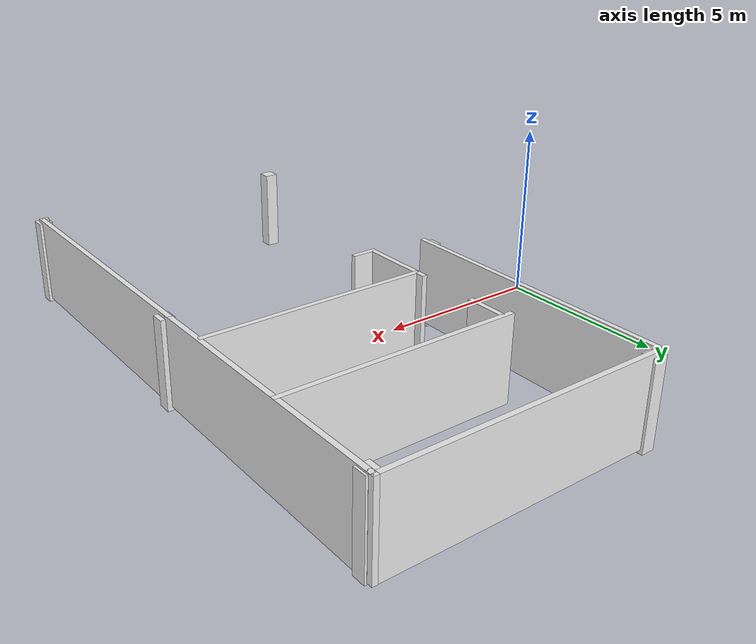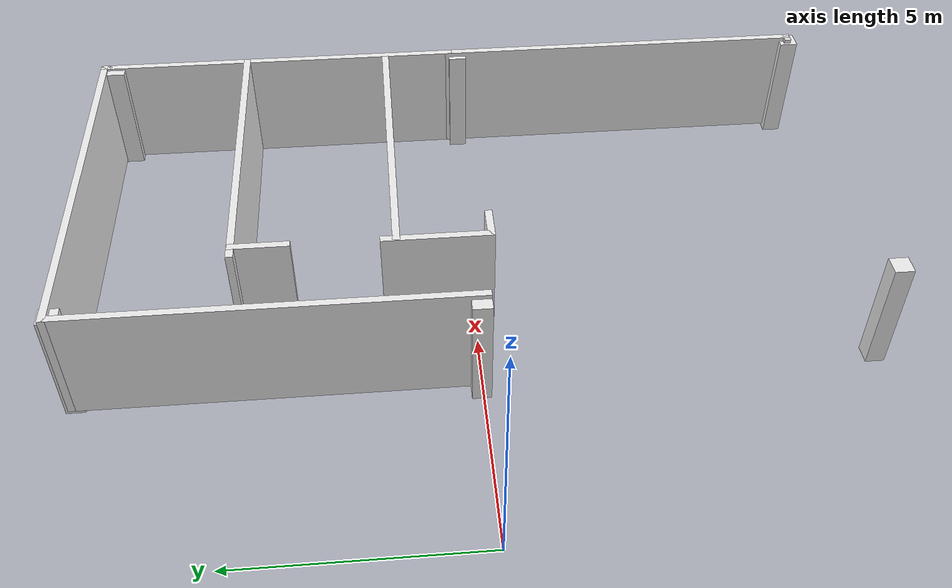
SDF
<sdf version="1.6">
 <model name="h_wall">
  <link name="Wall_11">
   <pose>11.9424 -8.025 0 0 -0 0</pose>
   <visual name="Wall_11_Visual">
    <pose>0 0 1.25 0 -0 0</pose>
    <geometry><box><size>0.25 0.15 2.5</size></box></geometry>
    <material>
     <script><uri>file://media/materials/scripts/gazebo.material</uri><name>Gazebo/White</name></script>
     <ambient>1 1 1 1</ambient>
     <diffuse>0.7 0.7 0.7 1</diffuse>
     <specular>0.01 0.01 0.01 1</specular>
     <emissive>0 0 0 1</emissive>
    </material>
   </visual>
   <collision name="Wall_11_Collision">
    <pose>0 0 1.25 0 -0 0</pose>
    <geometry><box><size>0.25 0.15 2.5</size></box></geometry>
    <surface>
     <friction>
      <ode><mu>1</mu><mu2>1</mu2><fdir1>0 0 0</fdir1><slip1>0</slip1><slip2>0</slip2></ode>
      <torsional>
       <coefficient>1</coefficient>
       <patch_radius>0</patch_radius>
       <surface_radius>0</surface_radius>
       <use_patch_radius>1</use_patch_radius>
       <ode><slip>0</slip></ode>
      </torsional>
     </friction>
     <bounce><restitution_coefficient>0</restitution_coefficient><threshold>1e+06</threshold></bounce>
     <contact>
      <collide_without_contact>0</collide_without_contact>
      <collide_without_contact_bitmask>1</collide_without_contact_bitmask>
      <collide_bitmask>1</collide_bitmask>
      <ode>
       <soft_cfm>0</soft_cfm>
       <soft_erp>0.2</soft_erp>
       <kp>1e+13</kp>
       <kd>1</kd>
       <max_vel>0.01</max_vel>
       <min_depth>0</min_depth>
      </ode>
      <bullet>
       <split_impulse>1</split_impulse>
       <split_impulse_penetration_threshold>-0.01</split_impulse_penetration_threshold>
       <soft_cfm>0</soft_cfm>
       <soft_erp>0.2</soft_erp>
       <kp>1e+13</kp>
       <kd>1</kd>
      </bullet>
     </contact>
    </surface>
   </collision>
  </link>
  <link name="Wall_12">
   <pose>11.9924 -3.975 0 0 -0 1.5708</pose>
   <visual name="Wall_12_Visual">
    <pose>0 0 1.25 0 -0 0</pose>
    <geometry><box><size>8.25 0.15 2.5</size></box></geometry>
    <material>
     <script><uri>file://media/materials/scripts/gazebo.material</uri><name>Gazebo/White</name></script>
     <ambient>1 1 1 1</ambient>
     <diffuse>0.7 0.7 0.7 1</diffuse>
     <specular>0.01 0.01 0.01 1</specular>
     <emissive>0 0 0 1</emissive>
    </material>
   </visual>
   <collision name="Wall_12_Collision">
    <pose>0 0 1.25 0 -0 0</pose>
    <geometry><box><size>8.25 0.15 2.5</size></box></geometry>
    <surface>
     <friction>
      <ode><mu>1</mu><mu2>1</mu2><fdir1>0 0 0</fdir1><slip1>0</slip1><slip2>0</slip2></ode>
      <torsional>
       <coefficient>1</coefficient>
       <patch_radius>0</patch_radius>
       <surface_radius>0</surface_radius>
       <use_patch_radius>1</use_patch_radius>
       <ode><slip>0</slip></ode>
      </torsional>
     </friction>
     <bounce><restitution_coefficient>0</restitution_coefficient><threshold>1e+06</threshold></bounce>
     <contact>
      <collide_without_contact>0</collide_without_contact>
      <collide_without_contact_bitmask>1</collide_without_contact_bitmask>
      <collide_bitmask>1</collide_bitmask>
      <ode>
       <soft_cfm>0</soft_cfm>
       <soft_erp>0.2</soft_erp>
       <kp>1e+13</kp>
       <kd>1</kd>
       <max_vel>0.01</max_vel>
       <min_depth>0</min_depth>
      </ode>
      <bullet>
       <split_impulse>1</split_impulse>
       <split_impulse_penetration_threshold>-0.01</split_impulse_penetration_threshold>
       <soft_cfm>0</soft_cfm>
       <soft_erp>0.2</soft_erp>
       <kp>1e+13</kp>
       <kd>1</kd>
      </bullet>
     </contact>
    </surface>
   </collision>
  </link>
  <link name="Wall_13">
   <pose>11.9924 4 0 0 -0 1.5708</pose>
   <inertial>
    <mass>1</mass>
    <inertia><ixx>1</ixx><ixy>0</ixy><ixz>0</ixz><iyy>1</iyy><iyz>0</iyz><izz>1</izz></inertia>
   </inertial>
   <visual name="Wall_13_Visual">
    <pose>0 0 1.25 0 -0 0</pose>
    <geometry><box><size>8 0.15 2.5</size></box></geometry>
    <material>
     <script><uri>file://media/materials/scripts/gazebo.material</uri><name>Gazebo/White</name></script>
     <ambient>1 1 1 1</ambient>
     <diffuse>0.7 0.7 0.7 1</diffuse>
     <specular>0.01 0.01 0.01 1</specular>
     <emissive>0 0 0 1</emissive>
     <shader type="vertex"><normal_map>__default__</normal_map></shader>
    </material>
   </visual>
   <collision name="Wall_13_Collision">
    <pose>0 0 1.25 0 -0 0</pose>
    <geometry><box><size>8 0.15 2.5</size></box></geometry>
    <surface>
     <friction>
      <ode><mu>1</mu><mu2>1</mu2><fdir1>0 0 0</fdir1><slip1>0</slip1><slip2>0</slip2></ode>
      <torsional>
       <coefficient>1</coefficient>
       <patch_radius>0</patch_radius>
       <surface_radius>0</surface_radius>
       <use_patch_radius>1</use_patch_radius>
       <ode><slip>0</slip></ode>
      </torsional>
     </friction>
     <bounce><restitution_coefficient>0</restitution_coefficient><threshold>1e+06</threshold></bounce>
     <contact>
      <collide_without_contact>0</collide_without_contact>
      <collide_without_contact_bitmask>1</collide_without_contact_bitmask>
      <collide_bitmask>1</collide_bitmask>
      <ode>
       <soft_cfm>0</soft_cfm>
       <soft_erp>0.2</soft_erp>
       <kp>1e+13</kp>
       <kd>1</kd>
       <max_vel>0.01</max_vel>
       <min_depth>0</min_depth>
      </ode>
      <bullet>
       <split_impulse>1</split_impulse>
       <split_impulse_penetration_threshold>-0.01</split_impulse_penetration_threshold>
       <soft_cfm>0</soft_cfm>
       <soft_erp>0.2</soft_erp>
       <kp>1e+13</kp>
       <kd>1</kd>
      </bullet>
     </contact>
    </surface>
   </collision>
  </link>
  <link name="Wall_14">
   <pose>11.9924 7.925 0 0 -0 0</pose>
   <visual name="Wall_14_Visual">
    <pose>0 0 1.25 0 -0 0</pose>
    <geometry><box><size>0.15 0.15 2.5</size></box></geometry>
    <material>
     <script><uri>file://media/materials/scripts/gazebo.material</uri><name>Gazebo/White</name></script>
     <ambient>1 1 1 1</ambient>
     <diffuse>0.7 0.7 0.7 1</diffuse>
     <specular>0.01 0.01 0.01 1</specular>
     <emissive>0 0 0 1</emissive>
    </material>
   </visual>
   <collision name="Wall_14_Collision">
    <pose>0 0 1.25 0 -0 0</pose>
    <geometry><box><size>0.15 0.15 2.5</size></box></geometry>
    <surface>
     <friction>
      <ode><mu>1</mu><mu2>1</mu2><fdir1>0 0 0</fdir1><slip1>0</slip1><slip2>0</slip2></ode>
      <torsional>
       <coefficient>1</coefficient>
       <patch_radius>0</patch_radius>
       <surface_radius>0</surface_radius>
       <use_patch_radius>1</use_patch_radius>
       <ode><slip>0</slip></ode>
      </torsional>
     </friction>
     <bounce><restitution_coefficient>0</restitution_coefficient><threshold>1e+06</threshold></bounce>
     <contact>
      <collide_without_contact>0</collide_without_contact>
      <collide_without_contact_bitmask>1</collide_without_contact_bitmask>
      <collide_bitmask>1</collide_bitmask>
      <ode>
       <soft_cfm>0</soft_cfm>
       <soft_erp>0.2</soft_erp>
       <kp>1e+13</kp>
       <kd>1</kd>
       <max_vel>0.01</max_vel>
       <min_depth>0</min_depth>
      </ode>
      <bullet>
       <split_impulse>1</split_impulse>
       <split_impulse_penetration_threshold>-0.01</split_impulse_penetration_threshold>
       <soft_cfm>0</soft_cfm>
       <soft_erp>0.2</soft_erp>
       <kp>1e+13</kp>
       <kd>1</kd>
      </bullet>
     </contact>
    </surface>
   </collision>
  </link>
  <link name="Wall_15">
   <pose>11.9924 7.975 0 0 -0 1.5708</pose>
   <visual name="Wall_15_Visual">
    <pose>0 0 1.25 0 -0 0</pose>
    <geometry><box><size>0.25 0.15 2.5</size></box></geometry>
    <material>
     <script><uri>file://media/materials/scripts/gazebo.material</uri><name>Gazebo/White</name></script>
     <ambient>1 1 1 1</ambient>
     <diffuse>0.7 0.7 0.7 1</diffuse>
     <specular>0.01 0.01 0.01 1</specular>
     <emissive>0 0 0 1</emissive>
    </material>
   </visual>
   <collision name="Wall_15_Collision">
    <pose>0 0 1.25 0 -0 0</pose>
    <geometry><box><size>0.25 0.15 2.5</size></box></geometry>
    <surface>
     <friction>
      <ode><mu>1</mu><mu2>1</mu2><fdir1>0 0 0</fdir1><slip1>0</slip1><slip2>0</slip2></ode>
      <torsional>
       <coefficient>1</coefficient>
       <patch_radius>0</patch_radius>
       <surface_radius>0</surface_radius>
       <use_patch_radius>1</use_patch_radius>
       <ode><slip>0</slip></ode>
      </torsional>
     </friction>
     <bounce><restitution_coefficient>0</restitution_coefficient><threshold>1e+06</threshold></bounce>
     <contact>
      <collide_without_contact>0</collide_without_contact>
      <collide_without_contact_bitmask>1</collide_without_contact_bitmask>
      <collide_bitmask>1</collide_bitmask>
      <ode>
       <soft_cfm>0</soft_cfm>
       <soft_erp>0.2</soft_erp>
       <kp>1e+13</kp>
       <kd>1</kd>
       <max_vel>0.01</max_vel>
       <min_depth>0</min_depth>
      </ode>
      <bullet>
       <split_impulse>1</split_impulse>
       <split_impulse_penetration_threshold>-0.01</split_impulse_penetration_threshold>
       <soft_cfm>0</soft_cfm>
       <soft_erp>0.2</soft_erp>
       <kp>1e+13</kp>
       <kd>1</kd>
      </bullet>
     </contact>
    </surface>
   </collision>
  </link>
  <link name="Wall_16">
   <pose>7.94243 8.025 0 0 -0 3.14159</pose>
   <visual name="Wall_16_Visual">
    <pose>0 0 1.25 0 -0 0</pose>
    <geometry><box><size>8.25 0.15 2.5</size></box></geometry>
    <material>
     <script><uri>file://media/materials/scripts/gazebo.material</uri><name>Gazebo/White</name></script>
     <ambient>1 1 1 1</ambient>
     <diffuse>0.7 0.7 0.7 1</diffuse>
     <specular>0.01 0.01 0.01 1</specular>
     <emissive>0 0 0 1</emissive>
    </material>
   </visual>
   <collision name="Wall_16_Collision">
    <pose>0 0 1.25 0 -0 0</pose>
    <geometry><box><size>8.25 0.15 2.5</size></box></geometry>
    <surface>
     <friction>
      <ode><mu>1</mu><mu2>1</mu2><fdir1>0 0 0</fdir1><slip1>0</slip1><slip2>0</slip2></ode>
      <torsional>
       <coefficient>1</coefficient>
       <patch_radius>0</patch_radius>
       <surface_radius>0</surface_radius>
       <use_patch_radius>1</use_patch_radius>
       <ode><slip>0</slip></ode>
      </torsional>
     </friction>
     <bounce><restitution_coefficient>0</restitution_coefficient><threshold>1e+06</threshold></bounce>
     <contact>
      <collide_without_contact>0</collide_without_contact>
      <collide_without_contact_bitmask>1</collide_without_contact_bitmask>
      <collide_bitmask>1</collide_bitmask>
      <ode>
       <soft_cfm>0</soft_cfm>
       <soft_erp>0.2</soft_erp>
       <kp>1e+13</kp>
       <kd>1</kd>
       <max_vel>0.01</max_vel>
       <min_depth>0</min_depth>
      </ode>
      <bullet>
       <split_impulse>1</split_impulse>
       <split_impulse_penetration_threshold>-0.01</split_impulse_penetration_threshold>
       <soft_cfm>0</soft_cfm>
       <soft_erp>0.2</soft_erp>
       <kp>1e+13</kp>
       <kd>1</kd>
      </bullet>
     </contact>
    </surface>
   </collision>
  </link>
  <link name="Wall_17">
   <pose>3.89243 3.975 0 0 0 -1.5708</pose>
   <visual name="Wall_17_Visual">
    <pose>0 0 1.25 0 -0 0</pose>
    <geometry><box><size>8.25 0.15 2.5</size></box></geometry>
    <material>
     <script><uri>file://media/materials/scripts/gazebo.material</uri><name>Gazebo/White</name></script>
     <ambient>1 1 1 1</ambient>
     <diffuse>0.7 0.7 0.7 1</diffuse>
     <specular>0.01 0.01 0.01 1</specular>
     <emissive>0 0 0 1</emissive>
    </material>
   </visual>
   <collision name="Wall_17_Collision">
    <pose>0 0 1.25 0 -0 0</pose>
    <geometry><box><size>8.25 0.15 2.5</size></box></geometry>
    <surface>
     <friction>
      <ode><mu>1</mu><mu2>1</mu2><fdir1>0 0 0</fdir1><slip1>0</slip1><slip2>0</slip2></ode>
      <torsional>
       <coefficient>1</coefficient>
       <patch_radius>0</patch_radius>
       <surface_radius>0</surface_radius>
       <use_patch_radius>1</use_patch_radius>
       <ode><slip>0</slip></ode>
      </torsional>
     </friction>
     <bounce><restitution_coefficient>0</restitution_coefficient><threshold>1e+06</threshold></bounce>
     <contact>
      <collide_without_contact>0</collide_without_contact>
      <collide_without_contact_bitmask>1</collide_without_contact_bitmask>
      <collide_bitmask>1</collide_bitmask>
      <ode>
       <soft_cfm>0</soft_cfm>
       <soft_erp>0.2</soft_erp>
       <kp>1e+13</kp>
       <kd>1</kd>
       <max_vel>0.01</max_vel>
       <min_depth>0</min_depth>
      </ode>
      <bullet>
       <split_impulse>1</split_impulse>
       <split_impulse_penetration_threshold>-0.01</split_impulse_penetration_threshold>
       <soft_cfm>0</soft_cfm>
       <soft_erp>0.2</soft_erp>
       <kp>1e+13</kp>
       <kd>1</kd>
      </bullet>
     </contact>
    </surface>
   </collision>
  </link>
  <link name="Wall_33">
   <pose>8.6623 4.75744 0 0 -0 0</pose>
   <inertial>
    <inertia><ixx>nan</ixx><ixy>0</ixy><ixz>0</ixz><iyy>nan</iyy><iyz>0</iyz><izz>nan</izz></inertia>
    <mass>0</mass>
   </inertial>
   <visual name="Wall_33_Visual">
    <pose>0 0 1.25 0 -0 0</pose>
    <geometry><box><size>6.80324 0.15 2.5</size></box></geometry>
    <material>
     <script><uri>file://media/materials/scripts/gazebo.material</uri><name>Gazebo/White</name></script>
     <ambient>1 1 1 1</ambient>
     <diffuse>0.7 0.7 0.7 1</diffuse>
     <specular>0.01 0.01 0.01 1</specular>
     <emissive>0 0 0 1</emissive>
    </material>
   </visual>
   <collision name="Wall_33_Collision">
    <pose>0 0 1.25 0 -0 0</pose>
    <geometry><box><size>6.80324 0.15 2.5</size></box></geometry>
    <surface>
     <friction>
      <ode><mu>1</mu><mu2>1</mu2><fdir1>0 0 0</fdir1><slip1>0</slip1><slip2>0</slip2></ode>
      <torsional>
       <coefficient>1</coefficient>
       <patch_radius>0</patch_radius>
       <surface_radius>0</surface_radius>
       <use_patch_radius>1</use_patch_radius>
       <ode><slip>0</slip></ode>
      </torsional>
     </friction>
     <bounce><restitution_coefficient>0</restitution_coefficient><threshold>1e+06</threshold></bounce>
     <contact>
      <collide_without_contact>0</collide_without_contact>
      <collide_without_contact_bitmask>1</collide_without_contact_bitmask>
      <collide_bitmask>1</collide_bitmask>
      <ode>
       <soft_cfm>0</soft_cfm>
       <soft_erp>0.2</soft_erp>
       <kp>1e+13</kp>
       <kd>1</kd>
       <max_vel>0.01</max_vel>
       <min_depth>0</min_depth>
      </ode>
      <bullet>
       <split_impulse>1</split_impulse>
       <split_impulse_penetration_threshold>-0.01</split_impulse_penetration_threshold>
       <soft_cfm>0</soft_cfm>
       <soft_erp>0.2</soft_erp>
       <kp>1e+13</kp>
       <kd>1</kd>
      </bullet>
     </contact>
    </surface>
   </collision>
  </link>
  <link name="Wall_35">
   <pose>5.55705 4.2159 0 0 0 -1.5708</pose>
   <inertial>
    <inertia><ixx>nan</ixx><ixy>0</ixy><ixz>0</ixz><iyy>nan</iyy><iyz>0</iyz><izz>nan</izz></inertia>
    <mass>0</mass>
   </inertial>
   <visual name="Wall_35_Visual">
    <pose>0 0 1.25 0 -0 0</pose>
    <geometry><box><size>1.22204 0.15 2.5</size></box></geometry>
    <material>
     <script><uri>file://media/materials/scripts/gazebo.material</uri><name>Gazebo/White</name></script>
     <ambient>1 1 1 1</ambient>
     <diffuse>0.7 0.7 0.7 1</diffuse>
     <specular>0.01 0.01 0.01 1</specular>
     <emissive>0 0 0 1</emissive>
    </material>
   </visual>
   <collision name="Wall_35_Collision">
    <pose>0 0 1.25 0 -0 0</pose>
    <geometry><box><size>1.22204 0.15 2.5</size></box></geometry>
    <surface>
     <friction>
      <ode><mu>1</mu><mu2>1</mu2><fdir1>0 0 0</fdir1><slip1>0</slip1><slip2>0</slip2></ode>
      <torsional>
       <coefficient>1</coefficient>
       <patch_radius>0</patch_radius>
       <surface_radius>0</surface_radius>
       <use_patch_radius>1</use_patch_radius>
       <ode><slip>0</slip></ode>
      </torsional>
     </friction>
     <bounce><restitution_coefficient>0</restitution_coefficient><threshold>1e+06</threshold></bounce>
     <contact>
      <collide_without_contact>0</collide_without_contact>
      <collide_without_contact_bitmask>1</collide_without_contact_bitmask>
      <collide_bitmask>1</collide_bitmask>
      <ode>
       <soft_cfm>0</soft_cfm>
       <soft_erp>0.2</soft_erp>
       <kp>1e+13</kp>
       <kd>1</kd>
       <max_vel>0.01</max_vel>
       <min_depth>0</min_depth>
      </ode>
      <bullet>
       <split_impulse>1</split_impulse>
       <split_impulse_penetration_threshold>-0.01</split_impulse_penetration_threshold>
       <soft_cfm>0</soft_cfm>
       <soft_erp>0.2</soft_erp>
       <kp>1e+13</kp>
       <kd>1</kd>
      </bullet>
     </contact>
    </surface>
   </collision>
  </link>
  <link name="Wall_37">
   <pose>8.74527 1.55699 0 0 -0 0</pose>
   <visual name="Wall_37_Visual">
    <pose>0 0 1.25 0 -0 0</pose>
    <geometry><box><size>6.5 0.15 2.5</size></box></geometry>
    <material>
     <script><uri>file://media/materials/scripts/gazebo.material</uri><name>Gazebo/White</name></script>
     <ambient>1 1 1 1</ambient>
     <diffuse>0.7 0.7 0.7 1</diffuse>
     <specular>0.01 0.01 0.01 1</specular>
     <emissive>0 0 0 1</emissive>
    </material>
   </visual>
   <collision name="Wall_37_Collision">
    <pose>0 0 1.25 0 -0 0</pose>
    <geometry><box><size>6.5 0.15 2.5</size></box></geometry>
    <surface>
     <friction>
      <ode><mu>1</mu><mu2>1</mu2><fdir1>0 0 0</fdir1><slip1>0</slip1><slip2>0</slip2></ode>
      <torsional>
       <coefficient>1</coefficient>
       <patch_radius>0</patch_radius>
       <surface_radius>0</surface_radius>
       <use_patch_radius>1</use_patch_radius>
       <ode><slip>0</slip></ode>
      </torsional>
     </friction>
     <bounce><restitution_coefficient>0</restitution_coefficient><threshold>1e+06</threshold></bounce>
     <contact>
      <collide_without_contact>0</collide_without_contact>
      <collide_without_contact_bitmask>1</collide_without_contact_bitmask>
      <collide_bitmask>1</collide_bitmask>
      <ode>
       <soft_cfm>0</soft_cfm>
       <soft_erp>0.2</soft_erp>
       <kp>1e+13</kp>
       <kd>1</kd>
       <max_vel>0.01</max_vel>
       <min_depth>0</min_depth>
      </ode>
      <bullet>
       <split_impulse>1</split_impulse>
       <split_impulse_penetration_threshold>-0.01</split_impulse_penetration_threshold>
       <soft_cfm>0</soft_cfm>
       <soft_erp>0.2</soft_erp>
       <kp>1e+13</kp>
       <kd>1</kd>
      </bullet>
     </contact>
    </surface>
   </collision>
  </link>
  <link name="Wall_39">
   <pose>5.54382 0.745041 0 0 0 -1.5708</pose>
   <visual name="Wall_39_Visual">
    <pose>0 0 1.25 0 -0 0</pose>
    <geometry><box><size>2.25 0.15 2.5</size></box></geometry>
    <material>
     <script><uri>file://media/materials/scripts/gazebo.material</uri><name>Gazebo/White</name></script>
     <ambient>1 1 1 1</ambient>
     <diffuse>0.7 0.7 0.7 1</diffuse>
     <specular>0.01 0.01 0.01 1</specular>
     <emissive>0 0 0 1</emissive>
    </material>
   </visual>
   <collision name="Wall_39_Collision">
    <pose>0 0 1.25 0 -0 0</pose>
    <geometry><box><size>2.25 0.15 2.5</size></box></geometry>
    <surface>
     <friction>
      <ode><mu>1</mu><mu2>1</mu2><fdir1>0 0 0</fdir1><slip1>0</slip1><slip2>0</slip2></ode>
      <torsional>
       <coefficient>1</coefficient>
       <patch_radius>0</patch_radius>
       <surface_radius>0</surface_radius>
       <use_patch_radius>1</use_patch_radius>
       <ode><slip>0</slip></ode>
      </torsional>
     </friction>
     <bounce><restitution_coefficient>0</restitution_coefficient><threshold>1e+06</threshold></bounce>
     <contact>
      <collide_without_contact>0</collide_without_contact>
      <collide_without_contact_bitmask>1</collide_without_contact_bitmask>
      <collide_bitmask>1</collide_bitmask>
      <ode>
       <soft_cfm>0</soft_cfm>
       <soft_erp>0.2</soft_erp>
       <kp>1e+13</kp>
       <kd>1</kd>
       <max_vel>0.01</max_vel>
       <min_depth>0</min_depth>
      </ode>
      <bullet>
       <split_impulse>1</split_impulse>
       <split_impulse_penetration_threshold>-0.01</split_impulse_penetration_threshold>
       <soft_cfm>0</soft_cfm>
       <soft_erp>0.2</soft_erp>
       <kp>1e+13</kp>
       <kd>1</kd>
      </bullet>
     </contact>
    </surface>
   </collision>
  </link>
  <link name="Wall_40">
   <pose>5.84382 -0.304959 0 0 -0 0</pose>
   <visual name="Wall_40_Visual">
    <pose>0 0 1.25 0 -0 0</pose>
    <geometry><box><size>0.75 0.15 2.5</size></box></geometry>
    <material>
     <script><uri>file://media/materials/scripts/gazebo.material</uri><name>Gazebo/White</name></script>
     <ambient>1 1 1 1</ambient>
     <diffuse>0.7 0.7 0.7 1</diffuse>
     <specular>0.01 0.01 0.01 1</specular>
     <emissive>0 0 0 1</emissive>
    </material>
   </visual>
   <collision name="Wall_40_Collision">
    <pose>0 0 1.25 0 -0 0</pose>
    <geometry><box><size>0.75 0.15 2.5</size></box></geometry>
    <surface>
     <friction>
      <ode><mu>1</mu><mu2>1</mu2><fdir1>0 0 0</fdir1><slip1>0</slip1><slip2>0</slip2></ode>
      <torsional>
       <coefficient>1</coefficient>
       <patch_radius>0</patch_radius>
       <surface_radius>0</surface_radius>
       <use_patch_radius>1</use_patch_radius>
       <ode><slip>0</slip></ode>
      </torsional>
     </friction>
     <bounce><restitution_coefficient>0</restitution_coefficient><threshold>1e+06</threshold></bounce>
     <contact>
      <collide_without_contact>0</collide_without_contact>
      <collide_without_contact_bitmask>1</collide_without_contact_bitmask>
      <collide_bitmask>1</collide_bitmask>
      <ode>
       <soft_cfm>0</soft_cfm>
       <soft_erp>0.2</soft_erp>
       <kp>1e+13</kp>
       <kd>1</kd>
       <max_vel>0.01</max_vel>
       <min_depth>0</min_depth>
      </ode>
      <bullet>
       <split_impulse>1</split_impulse>
       <split_impulse_penetration_threshold>-0.01</split_impulse_penetration_threshold>
       <soft_cfm>0</soft_cfm>
       <soft_erp>0.2</soft_erp>
       <kp>1e+13</kp>
       <kd>1</kd>
      </bullet>
     </contact>
    </surface>
   </collision>
  </link>
  <link name="link_0_clone">
   <pose>4.0632 7.97478 1.13723 0 -0 0</pose>
   <inertial>
    <mass>0.670895</mass>
    <inertia>
     <ixx>0.374827</ixx>
     <ixy>0</ixy>
     <ixz>0</ixz>
     <iyy>0.367239</iyy>
     <iyz>0</iyz>
     <izz>0.0306942</izz>
    </inertia>
   </inertial>
   <visual name="visual">
    <geometry><box><size>0.39 0.39 2.5</size></box></geometry>
    <material>
     <lighting>1</lighting>
     <script><uri>file://media/materials/scripts/gazebo.material</uri><name>Gazebo/White</name></script>
     <ambient>0.3 0.3 0.3 1</ambient>
     <diffuse>0.7 0.7 0.7 1</diffuse>
     <specular>0.01 0.01 0.01 1</specular>
     <emissive>0 0 0 1</emissive>
     <shader type="vertex"><normal_map>__default__</normal_map></shader>
    </material>
   </visual>
   <collision name="collision">
    <geometry><box><size>0.39 0.39 2.5</size></box></geometry>
    <surface>
     <friction>
      <ode><mu>1</mu><mu2>1</mu2><fdir1>0 0 0</fdir1><slip1>0</slip1><slip2>0</slip2></ode>
      <torsional>
       <coefficient>1</coefficient>
       <patch_radius>0</patch_radius>
       <surface_radius>0</surface_radius>
       <use_patch_radius>1</use_patch_radius>
       <ode><slip>0</slip></ode>
      </torsional>
     </friction>
     <bounce><restitution_coefficient>0</restitution_coefficient><threshold>1e+06</threshold></bounce>
     <contact>
      <collide_without_contact>0</collide_without_contact>
      <collide_without_contact_bitmask>1</collide_without_contact_bitmask>
      <collide_bitmask>1</collide_bitmask>
      <ode>
       <soft_cfm>0</soft_cfm>
       <soft_erp>0.2</soft_erp>
       <kp>1e+13</kp>
       <kd>1</kd>
       <max_vel>0.01</max_vel>
       <min_depth>0</min_depth>
      </ode>
      <bullet>
       <split_impulse>1</split_impulse>
       <split_impulse_penetration_threshold>-0.01</split_impulse_penetration_threshold>
       <soft_cfm>0</soft_cfm>
       <soft_erp>0.2</soft_erp>
       <kp>1e+13</kp>
       <kd>1</kd>
      </bullet>
     </contact>
    </surface>
   </collision>
  </link>
  <link name="link_0_clone_clone">
   <pose>11.9295 7.75339 1.20464 0 -0 0</pose>
   <inertial>
    <mass>0.670895</mass>
    <inertia>
     <ixx>0.374827</ixx>
     <ixy>0</ixy>
     <ixz>0</ixz>
     <iyy>0.367239</iyy>
     <iyz>0</iyz>
     <izz>0.0306942</izz>
    </inertia>
   </inertial>
   <visual name="visual">
    <geometry><box><size>0.39 0.39 2.5</size></box></geometry>
    <material>
     <lighting>1</lighting>
     <script><uri>file://media/materials/scripts/gazebo.material</uri><name>Gazebo/White</name></script>
     <ambient>0.3 0.3 0.3 1</ambient>
     <diffuse>0.7 0.7 0.7 1</diffuse>
     <specular>0.01 0.01 0.01 1</specular>
     <emissive>0 0 0 1</emissive>
     <shader type="vertex"><normal_map>__default__</normal_map></shader>
    </material>
   </visual>
   <collision name="collision">
    <geometry><box><size>0.39 0.39 2.5</size></box></geometry>
    <surface>
     <friction>
      <ode><mu>1</mu><mu2>1</mu2><fdir1>0 0 0</fdir1><slip1>0</slip1><slip2>0</slip2></ode>
      <torsional>
       <coefficient>1</coefficient>
       <patch_radius>0</patch_radius>
       <surface_radius>0</surface_radius>
       <use_patch_radius>1</use_patch_radius>
       <ode><slip>0</slip></ode>
      </torsional>
     </friction>
     <bounce><restitution_coefficient>0</restitution_coefficient><threshold>1e+06</threshold></bounce>
     <contact>
      <collide_without_contact>0</collide_without_contact>
      <collide_without_contact_bitmask>1</collide_without_contact_bitmask>
      <collide_bitmask>1</collide_bitmask>
      <ode>
       <soft_cfm>0</soft_cfm>
       <soft_erp>0.2</soft_erp>
       <kp>1e+13</kp>
       <kd>1</kd>
       <max_vel>0.01</max_vel>
       <min_depth>0</min_depth>
      </ode>
      <bullet>
       <split_impulse>1</split_impulse>
       <split_impulse_penetration_threshold>-0.01</split_impulse_penetration_threshold>
       <soft_cfm>0</soft_cfm>
       <soft_erp>0.2</soft_erp>
       <kp>1e+13</kp>
       <kd>1</kd>
      </bullet>
     </contact>
    </surface>
   </collision>
  </link>
  <link name="link_0_clone_clone_0">
   <pose>3.75854 0.043794 1.1564 0 -0 0</pose>
   <inertial>
    <mass>0.670895</mass>
    <inertia>
     <ixx>0.374827</ixx>
     <ixy>0</ixy>
     <ixz>0</ixz>
     <iyy>0.367239</iyy>
     <iyz>0</iyz>
     <izz>0.0306942</izz>
    </inertia>
   </inertial>
   <visual name="visual">
    <geometry><box><size>0.39 0.39 2.5</size></box></geometry>
    <material>
     <lighting>1</lighting>
     <script><uri>file://media/materials/scripts/gazebo.material</uri><name>Gazebo/White</name></script>
     <ambient>0.3 0.3 0.3 1</ambient>
     <diffuse>0.7 0.7 0.7 1</diffuse>
     <specular>0.01 0.01 0.01 1</specular>
     <emissive>0 0 0 1</emissive>
     <shader type="vertex"><normal_map>__default__</normal_map></shader>
    </material>
   </visual>
   <collision name="collision">
    <geometry><box><size>0.39 0.39 2.5</size></box></geometry>
    <surface>
     <friction>
      <ode><mu>1</mu><mu2>1</mu2><fdir1>0 0 0</fdir1><slip1>0</slip1><slip2>0</slip2></ode>
      <torsional>
       <coefficient>1</coefficient>
       <patch_radius>0</patch_radius>
       <surface_radius>0</surface_radius>
       <use_patch_radius>1</use_patch_radius>
       <ode><slip>0</slip></ode>
      </torsional>
     </friction>
     <bounce><restitution_coefficient>0</restitution_coefficient><threshold>1e+06</threshold></bounce>
     <contact>
      <collide_without_contact>0</collide_without_contact>
      <collide_without_contact_bitmask>1</collide_without_contact_bitmask>
      <collide_bitmask>1</collide_bitmask>
      <ode>
       <soft_cfm>0</soft_cfm>
       <soft_erp>0.2</soft_erp>
       <kp>1e+13</kp>
       <kd>1</kd>
       <max_vel>0.01</max_vel>
       <min_depth>0</min_depth>
      </ode>
      <bullet>
       <split_impulse>1</split_impulse>
       <split_impulse_penetration_threshold>-0.01</split_impulse_penetration_threshold>
       <soft_cfm>0</soft_cfm>
       <soft_erp>0.2</soft_erp>
       <kp>1e+13</kp>
       <kd>1</kd>
      </bullet>
     </contact>
    </surface>
   </collision>
  </link>
  <link name="link_0_clone_clone_0_clone_0">
   <pose>11.9566 -8.04394 1.1564 0 -0 0</pose>
   <inertial>
    <mass>0.670895</mass>
    <inertia>
     <ixx>0.374827</ixx>
     <ixy>0</ixy>
     <ixz>0</ixz>
     <iyy>0.367239</iyy>
     <iyz>0</iyz>
     <izz>0.0306942</izz>
    </inertia>
   </inertial>
   <visual name="visual">
    <geometry><box><size>0.39 0.39 2.5</size></box></geometry>
    <material>
     <lighting>1</lighting>
     <script><uri>file://media/materials/scripts/gazebo.material</uri><name>Gazebo/White</name></script>
     <ambient>0.3 0.3 0.3 1</ambient>
     <diffuse>0.7 0.7 0.7 1</diffuse>
     <specular>0.01 0.01 0.01 1</specular>
     <emissive>0 0 0 1</emissive>
     <shader type="vertex"><normal_map>__default__</normal_map></shader>
    </material>
   </visual>
   <collision name="collision">
    <geometry><box><size>0.39 0.39 2.5</size></box></geometry>
    <surface>
     <friction>
      <ode><mu>1</mu><mu2>1</mu2><fdir1>0 0 0</fdir1><slip1>0</slip1><slip2>0</slip2></ode>
      <torsional>
       <coefficient>1</coefficient>
       <patch_radius>0</patch_radius>
       <surface_radius>0</surface_radius>
       <use_patch_radius>1</use_patch_radius>
       <ode><slip>0</slip></ode>
      </torsional>
     </friction>
     <bounce><restitution_coefficient>0</restitution_coefficient><threshold>1e+06</threshold></bounce>
     <contact>
      <collide_without_contact>0</collide_without_contact>
      <collide_without_contact_bitmask>1</collide_without_contact_bitmask>
      <collide_bitmask>1</collide_bitmask>
      <ode>
       <soft_cfm>0</soft_cfm>
       <soft_erp>0.2</soft_erp>
       <kp>1e+13</kp>
       <kd>1</kd>
       <max_vel>0.01</max_vel>
       <min_depth>0</min_depth>
      </ode>
      <bullet>
       <split_impulse>1</split_impulse>
       <split_impulse_penetration_threshold>-0.01</split_impulse_penetration_threshold>
       <soft_cfm>0</soft_cfm>
       <soft_erp>0.2</soft_erp>
       <kp>1e+13</kp>
       <kd>1</kd>
      </bullet>
     </contact>
    </surface>
   </collision>
  </link>
  <link name="link_0_clone_clone_0_clone_0_clone">
   <pose>12.0032 -0.127115 1.1564 0 -0 0</pose>
   <inertial>
    <mass>0.670895</mass>
    <inertia>
     <ixx>0.374827</ixx>
     <ixy>0</ixy>
     <ixz>0</ixz>
     <iyy>0.367239</iyy>
     <iyz>0</iyz>
     <izz>0.0306942</izz>
    </inertia>
   </inertial>
   <visual name="visual">
    <geometry><box><size>0.39 0.39 2.5</size></box></geometry>
    <material>
     <lighting>1</lighting>
     <script><uri>file://media/materials/scripts/gazebo.material</uri><name>Gazebo/White</name></script>
     <ambient>0.3 0.3 0.3 1</ambient>
     <diffuse>0.7 0.7 0.7 1</diffuse>
     <specular>0.01 0.01 0.01 1</specular>
     <emissive>0 0 0 1</emissive>
     <shader type="vertex"><normal_map>__default__</normal_map></shader>
    </material>
   </visual>
   <collision name="collision">
    <geometry><box><size>0.39 0.39 2.5</size></box></geometry>
    <surface>
     <friction>
      <ode><mu>1</mu><mu2>1</mu2><fdir1>0 0 0</fdir1><slip1>0</slip1><slip2>0</slip2></ode>
      <torsional>
       <coefficient>1</coefficient>
       <patch_radius>0</patch_radius>
       <surface_radius>0</surface_radius>
       <use_patch_radius>1</use_patch_radius>
       <ode><slip>0</slip></ode>
      </torsional>
     </friction>
     <bounce><restitution_coefficient>0</restitution_coefficient><threshold>1e+06</threshold></bounce>
     <contact>
      <collide_without_contact>0</collide_without_contact>
      <collide_without_contact_bitmask>1</collide_without_contact_bitmask>
      <collide_bitmask>1</collide_bitmask>
      <ode>
       <soft_cfm>0</soft_cfm>
       <soft_erp>0.2</soft_erp>
       <kp>1e+13</kp>
       <kd>1</kd>
       <max_vel>0.01</max_vel>
       <min_depth>0</min_depth>
      </ode>
      <bullet>
       <split_impulse>1</split_impulse>
       <split_impulse_penetration_threshold>-0.01</split_impulse_penetration_threshold>
       <soft_cfm>0</soft_cfm>
       <soft_erp>0.2</soft_erp>
       <kp>1e+13</kp>
       <kd>1</kd>
      </bullet>
     </contact>
    </surface>
   </collision>
  </link>
  <link name="link_0_clone_clone_0_clone_clone_clone_clone_clone">
   <pose>4.06618 -8.0079 1.1564 0 -0 0</pose>
   <inertial>
    <mass>0.670895</mass>
    <inertia>
     <ixx>0.374827</ixx>
     <ixy>0</ixy>
     <ixz>0</ixz>
     <iyy>0.367239</iyy>
     <iyz>0</iyz>
     <izz>0.0306942</izz>
    </inertia>
   </inertial>
   <visual name="visual">
    <geometry><box><size>0.39 0.39 2.5</size></box></geometry>
    <material>
     <lighting>1</lighting>
     <script><uri>file://media/materials/scripts/gazebo.material</uri><name>Gazebo/White</name></script>
     <ambient>0.3 0.3 0.3 1</ambient>
     <diffuse>0.7 0.7 0.7 1</diffuse>
     <specular>0.01 0.01 0.01 1</specular>
     <emissive>0 0 0 1</emissive>
     <shader type="vertex"><normal_map>__default__</normal_map></shader>
    </material>
   </visual>
   <collision name="collision">
    <geometry><box><size>0.39 0.39 2.5</size></box></geometry>
    <surface>
     <friction>
      <ode><mu>1</mu><mu2>1</mu2><fdir1>0 0 0</fdir1><slip1>0</slip1><slip2>0</slip2></ode>
      <torsional>
       <coefficient>1</coefficient>
       <patch_radius>0</patch_radius>
       <surface_radius>0</surface_radius>
       <use_patch_radius>1</use_patch_radius>
       <ode><slip>0</slip></ode>
      </torsional>
     </friction>
     <bounce><restitution_coefficient>0</restitution_coefficient><threshold>1e+06</threshold></bounce>
     <contact>
      <collide_without_contact>0</collide_without_contact>
      <collide_without_contact_bitmask>1</collide_without_contact_bitmask>
      <collide_bitmask>1</collide_bitmask>
      <ode>
       <soft_cfm>0</soft_cfm>
       <soft_erp>0.2</soft_erp>
       <kp>1e+13</kp>
       <kd>1</kd>
       <max_vel>0.01</max_vel>
       <min_depth>0</min_depth>
      </ode>
      <bullet>
       <split_impulse>1</split_impulse>
       <split_impulse_penetration_threshold>-0.01</split_impulse_penetration_threshold>
       <soft_cfm>0</soft_cfm>
       <soft_erp>0.2</soft_erp>
       <kp>1e+13</kp>
       <kd>1</kd>
      </bullet>
     </contact>
    </surface>
   </collision>
  </link>
  <static>1</static>
 </model>
</sdf>
